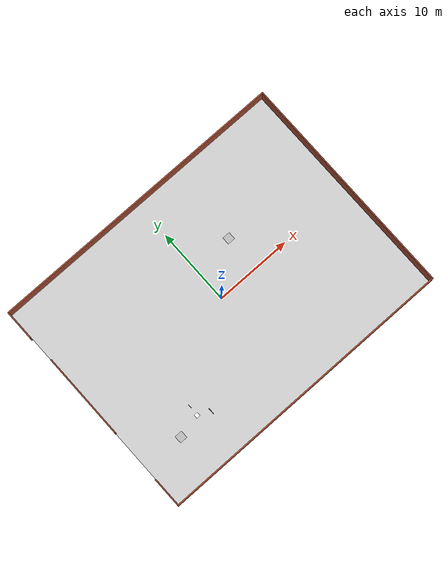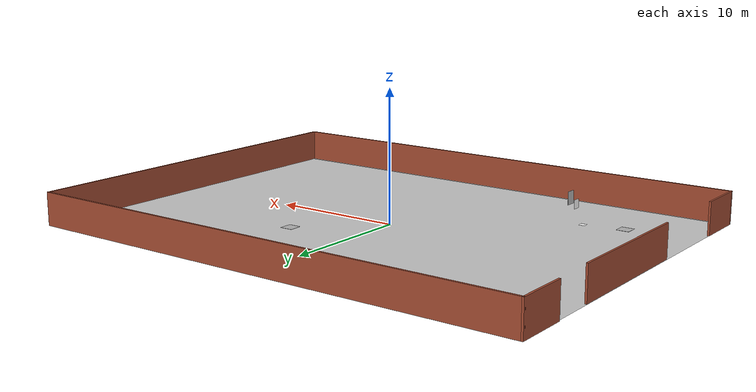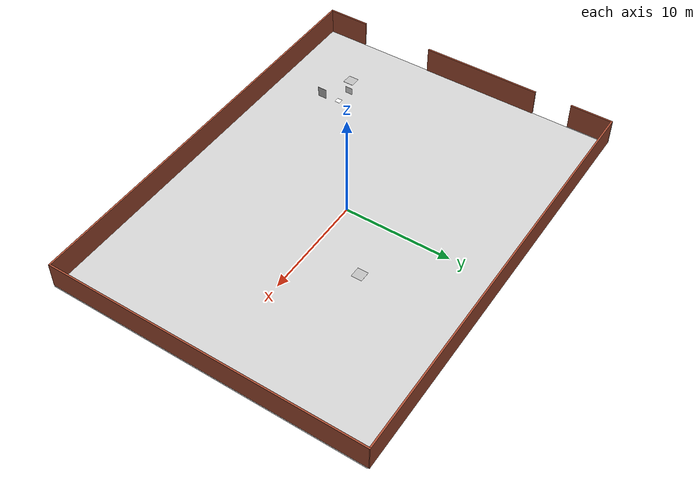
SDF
<sdf version="1.6">
 <world name="default">
  <light name="sun" type="directional">
   <pose>0 0 10 0 -0 0</pose>
   <diffuse>0.8 0.8 0.8 1</diffuse>
   <specular>0.1 0.1 0.1 1</specular>
   <attenuation>
    <range>1000</range>
    <constant>0.9</constant>
    <linear>0.01</linear>
    <quadratic>0.001</quadratic>
   </attenuation>
   <direction>-0.5 0.5 -1</direction>
  </light>
  <model name="cmu_ground_plane">
   <static>1</static>
   <link name="link">
    <collision name="collision">
     <geometry><plane><normal>0 0 1</normal><size>39.44 29.55</size></plane></geometry>
     <surface><friction><ode><mu>100</mu><mu2>50</mu2></ode></friction></surface>
    </collision>
    <visual name="visual">
     <cast_shadows>0</cast_shadows>
     <geometry><plane><normal>0 0 1</normal><size>39.44 29.55</size></plane></geometry>
     <material>
      <script>
       <uri>model://cmu_ground_plane/materials/scripts</uri>
       <uri>model://cmu_ground_plane/materials/textures</uri>
       <name>CMUGroundPlane/Image</name>
      </script>
     </material>
    </visual>
   </link>
  </model>
  <gravity>0 0 -9.8</gravity>
  <magnetic_field>6e-06 2.3e-05 -4.2e-05</magnetic_field>
  <atmosphere type="adiabatic"/>
  <physics name="default_physics" default="0" type="ode">
   <max_step_size>0.001</max_step_size>
   <real_time_factor>1</real_time_factor>
   <real_time_update_rate>1000</real_time_update_rate>
  </physics>
  <scene><ambient>0.4 0.4 0.4 1</ambient><background>0.7 0.7 0.7 1</background><shadows>1</shadows></scene>
  <spherical_coordinates>
   <surface_model>EARTH_WGS84</surface_model>
   <latitude_deg>0</latitude_deg>
   <longitude_deg>0</longitude_deg>
   <elevation>0</elevation>
   <heading_deg>0</heading_deg>
  </spherical_coordinates>
  <model name="garage">
   <pose>-0.1012 0.05082 0 0 -0 0</pose>
   <link name="Wall_10">
    <collision name="Wall_10_Collision">
     <geometry><box><size>11.25 0.15 2.5</size></box></geometry>
     <pose>0 0 1.25 0 -0 0</pose>
    </collision>
    <visual name="Wall_10_Visual">
     <pose>0 0 1.25 0 -0 0</pose>
     <geometry><box><size>11.25 0.15 2.5</size></box></geometry>
     <material>
      <script><uri>file://media/materials/scripts/gazebo.material</uri><name>Gazebo/Bricks</name></script>
      <ambient>1 1 1 1</ambient>
     </material>
    </visual>
    <pose>-19.5828 1.79493 0 0 0 -1.5708</pose>
   </link>
   <link name="Wall_2">
    <collision name="Wall_2_Collision">
     <geometry><box><size>4 0.15 2.5</size></box></geometry>
     <pose>0 0 1.25 0 -0 0</pose>
    </collision>
    <visual name="Wall_2_Visual">
     <pose>0 0 1.25 0 -0 0</pose>
     <geometry><box><size>4 0.15 2.5</size></box></geometry>
     <material>
      <script><uri>file://media/materials/scripts/gazebo.material</uri><name>Gazebo/Bricks</name></script>
      <ambient>1 1 1 1</ambient>
     </material>
    </visual>
    <pose>-19.6442 -12.8901 0 0 0 -1.5708</pose>
   </link>
   <link name="Wall_3">
    <collision name="Wall_3_Collision">
     <geometry><box><size>39.5 0.15 2.5</size></box></geometry>
     <pose>0 0 1.25 0 -0 0</pose>
    </collision>
    <visual name="Wall_3_Visual">
     <pose>0 0 1.25 0 -0 0</pose>
     <geometry><box><size>39.5 0.15 2.5</size></box></geometry>
     <material>
      <script><uri>file://media/materials/scripts/gazebo.material</uri><name>Gazebo/Bricks</name></script>
      <ambient>1 1 1 1</ambient>
     </material>
    </visual>
    <pose>0.030764 -14.8151 0 0 -0 0</pose>
   </link>
   <link name="Wall_4">
    <collision name="Wall_4_Collision">
     <geometry><box><size>29.75 0.15 2.5</size></box></geometry>
     <pose>0 0 1.25 0 -0 0</pose>
    </collision>
    <visual name="Wall_4_Visual">
     <pose>0 0 1.25 0 -0 0</pose>
     <geometry><box><size>29.75 0.15 2.5</size></box></geometry>
     <material>
      <script><uri>file://media/materials/scripts/gazebo.material</uri><name>Gazebo/Bricks</name></script>
      <ambient>1 1 1 1</ambient>
     </material>
    </visual>
    <pose>19.7058 -0.015118 0 0 -0 1.5708</pose>
   </link>
   <link name="Wall_5">
    <collision name="Wall_5_Collision">
     <geometry><box><size>39.5615 0.15 2.5</size></box></geometry>
     <pose>0 0 1.25 0 -0 0</pose>
    </collision>
    <visual name="Wall_5_Visual">
     <pose>0 0 1.25 0 -0 0</pose>
     <geometry><box><size>39.5615 0.15 2.5</size></box></geometry>
     <material>
      <script><uri>file://media/materials/scripts/gazebo.material</uri><name>Gazebo/Bricks</name></script>
      <ambient>1 1 1 1</ambient>
     </material>
    </visual>
    <pose>0 14.8 0 0 -0 3.14083</pose>
   </link>
   <link name="Wall_7">
    <collision name="Wall_7_Collision">
     <geometry><box><size>4 0.15 2.5</size></box></geometry>
     <pose>0 0 1.25 0 -0 0</pose>
    </collision>
    <visual name="Wall_7_Visual">
     <pose>0 0 1.25 0 -0 0</pose>
     <geometry><box><size>4 0.15 2.5</size></box></geometry>
     <material>
      <script><uri>file://media/materials/scripts/gazebo.material</uri><name>Gazebo/Bricks</name></script>
      <ambient>1 1 1 1</ambient>
     </material>
    </visual>
    <pose>-19.7058 12.8901 0 0 0 -1.5708</pose>
   </link>
   <static>1</static>
  </model>
  <model name="Apriltag36_11_00000">
   <link name="main">
    <visual name="main_Visual">
     <geometry><box><size>1 1 0.01</size></box></geometry>
     <material>
      <script>
       <uri>model://Apriltag36_11_00000/materials/scripts</uri>
       <uri>model://Apriltag36_11_00000/materials/textures</uri>
       <name>Apriltag36_11_00000</name>
      </script>
     </material>
    </visual>
   </link>
   <static>1</static>
   <pose>-14.3063 -9.01321 0 0 -0 0</pose>
  </model>
  <model name="Apriltag36_11_00001">
   <link name="main">
    <visual name="main_Visual">
     <geometry><box><size>1 0.855351 0.01</size></box></geometry>
     <material>
      <script>
       <uri>model://Apriltag36_11_00001/materials/scripts</uri>
       <uri>model://Apriltag36_11_00001/materials/textures</uri>
       <name>Apriltag36_11_00001</name>
      </script>
     </material>
    </visual>
   </link>
   <static>1</static>
   <pose>-9.77389 -9.18131 1.65589 0 -1.56014 0</pose>
  </model>
  <model name="Apriltag36_11_00002">
   <link name="main">
    <visual name="main_Visual">
     <geometry><box><size>1 1 0.01</size></box></geometry>
     <material>
      <script>
       <uri>model://Apriltag36_11_00002/materials/scripts</uri>
       <uri>model://Apriltag36_11_00002/materials/textures</uri>
       <name>Apriltag36_11_00002</name>
      </script>
     </material>
    </visual>
   </link>
   <static>1</static>
   <pose>5.36717 4.787 0 0 -0 0</pose>
  </model>
  <model name="aruco_visual_marker_7_1">
   <link name="marker">
    <visual name="visual">
     <geometry><box><size>0.684331 0.690621 1e-05</size></box></geometry>
     <material>
      <script>
       <uri>model://aruco_visual_marker_7/materials/scripts</uri>
       <uri>model://aruco_visual_marker_7/materials/textures</uri>
       <name>ArucoVisualMarker7/Marker</name>
      </script>
      <ambient>1 1 1 1</ambient>
      <diffuse>1 1 1 1</diffuse>
      <specular>0 0 0 1</specular>
      <emissive>1 1 1 0</emissive>
      <shader type="vertex"><normal_map>__default__</normal_map></shader>
     </material>
    </visual>
    <collision name="collision"><geometry><box><size>0.684331 0.690621 1e-05</size></box></geometry></collision>
   </link>
   <link name="marker_pad">
    <pose frame="marker">0 0 -1e-05 0 -0 0</pose>
    <visual name="visual">
     <geometry><box><size>0.684331 0.690621 1e-05</size></box></geometry>
     <material>
      <lighting>1</lighting>
      <script><uri>file://media/materials/scripts/gazebo.material</uri><name>Gazebo/White</name></script>
      <ambient>0.3 0.3 0.3 1</ambient>
      <diffuse>0.7 0.7 0.7 1</diffuse>
      <specular>0.01 0.01 0.01 1</specular>
      <emissive>1 1 1 0</emissive>
      <shader type="vertex"><normal_map>__default__</normal_map></shader>
     </material>
    </visual>
    <collision name="collision"><geometry><box><size>0.684331 0.690621 1e-05</size></box></geometry></collision>
   </link>
   <joint name="marker_JOINT_marker_pad" type="revolute">
    <parent>marker</parent>
    <child>marker_pad</child>
    <axis>
     <xyz>0 0 1</xyz>
     <limit><upper>0</upper><lower>0</lower></limit>
     <use_parent_model_frame>0</use_parent_model_frame>
     <dynamics><spring_reference>0</spring_reference><spring_stiffness>0</spring_stiffness></dynamics>
    </axis>
   </joint>
   <static>1</static>
   <pose>-11.2557 -7.23854 1.78402 0 -1.56591 0</pose>
  </model>
  <model name="aruco_visual_marker_7_2">
   <link name="marker">
    <visual name="visual">
     <geometry><box><size>0.5 0.5 1e-05</size></box></geometry>
     <material>
      <script>
       <uri>model://aruco_visual_marker_7/materials/scripts</uri>
       <uri>model://aruco_visual_marker_7/materials/textures</uri>
       <name>ArucoVisualMarker7/Marker</name>
      </script>
      <ambient>1 1 1 1</ambient>
      <diffuse>1 1 1 1</diffuse>
      <specular>0 0 0 1</specular>
      <emissive>1 1 1 0</emissive>
      <shader type="vertex"><normal_map>__default__</normal_map></shader>
     </material>
    </visual>
    <collision name="collision"><geometry><box><size>0.5 0.5 1e-05</size></box></geometry></collision>
   </link>
   <link name="marker_pad">
    <pose frame="marker">0 0 -1e-05 0 -0 0</pose>
    <visual name="visual">
     <geometry><box><size>0.5 0.5 1e-05</size></box></geometry>
     <material>
      <lighting>1</lighting>
      <script><uri>file://media/materials/scripts/gazebo.material</uri><name>Gazebo/White</name></script>
      <ambient>0.3 0.3 0.3 1</ambient>
      <diffuse>0.7 0.7 0.7 1</diffuse>
      <specular>0.01 0.01 0.01 1</specular>
      <emissive>1 1 1 0</emissive>
      <shader type="vertex"><normal_map>__default__</normal_map></shader>
     </material>
    </visual>
    <collision name="collision"><geometry><box><size>0.5 0.5 1e-05</size></box></geometry></collision>
   </link>
   <joint name="marker_JOINT_marker_pad" type="revolute">
    <parent>marker</parent>
    <child>marker_pad</child>
    <axis>
     <xyz>0 0 1</xyz>
     <limit><upper>0</upper><lower>0</lower></limit>
     <use_parent_model_frame>0</use_parent_model_frame>
     <dynamics><spring_reference>0</spring_reference><spring_stiffness>0</spring_stiffness></dynamics>
    </axis>
   </joint>
   <static>1</static>
   <pose>-11.2495 -8.38011 0 0 -0 0</pose>
  </model>
 </world>
</sdf>
